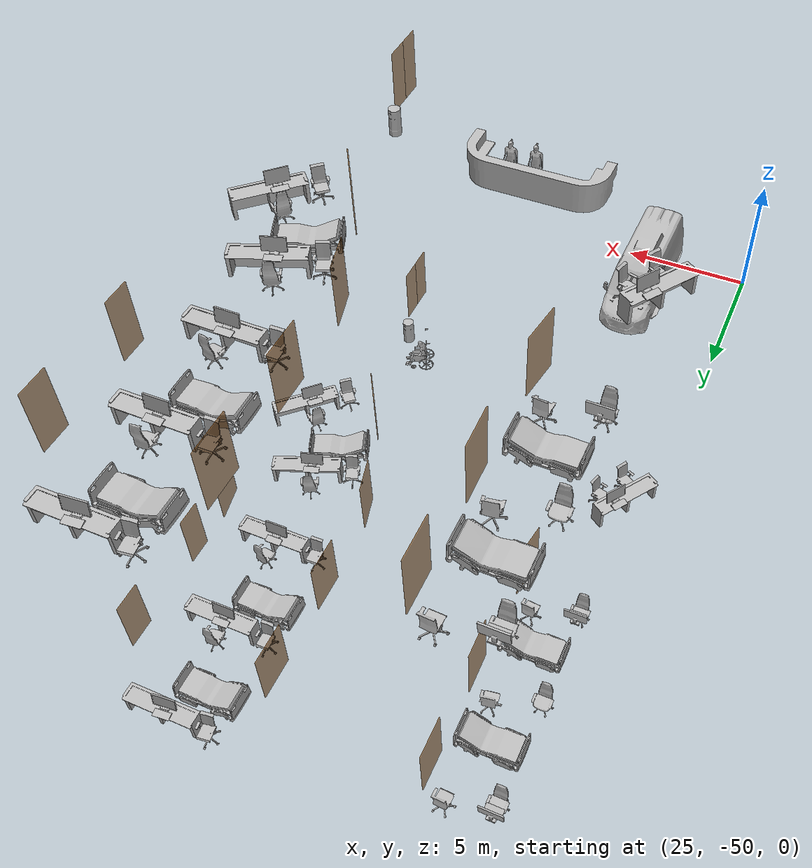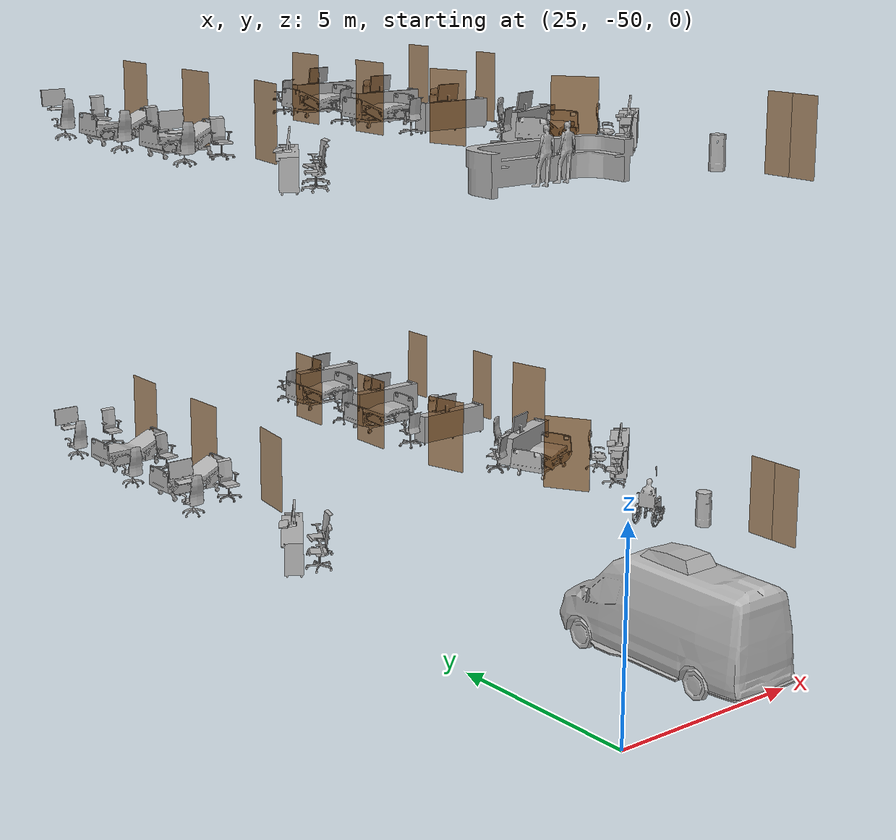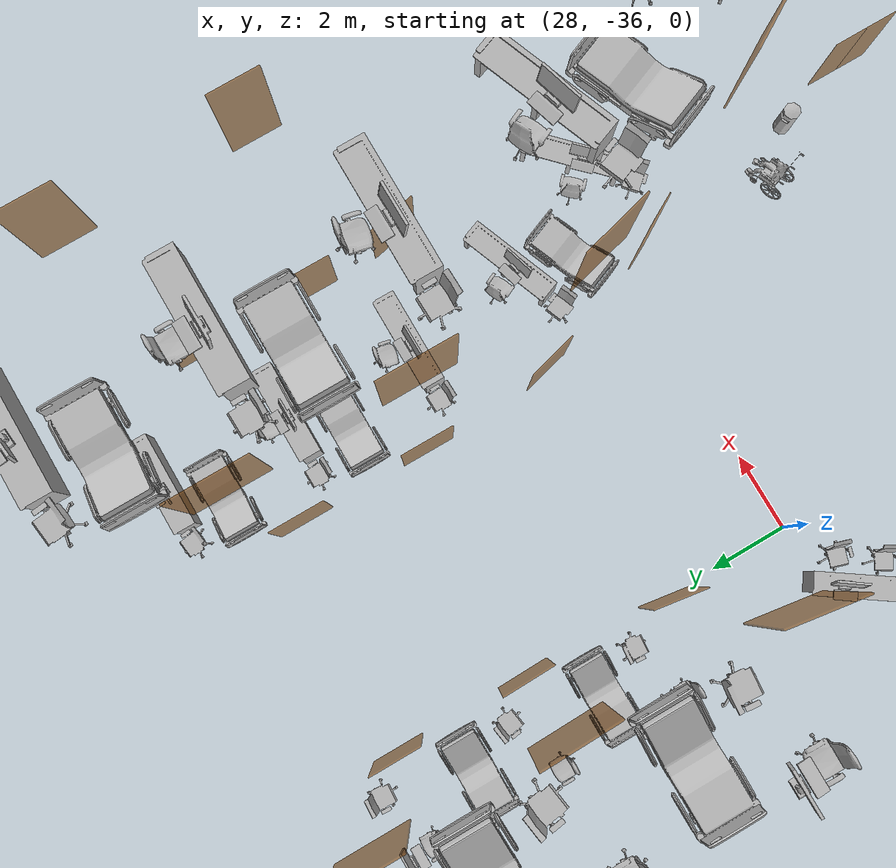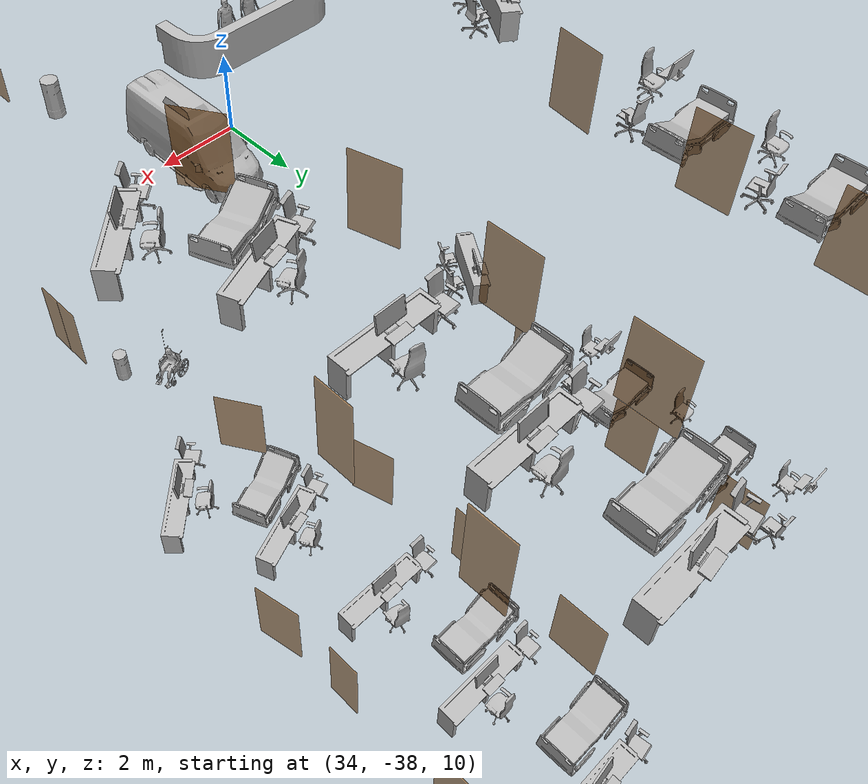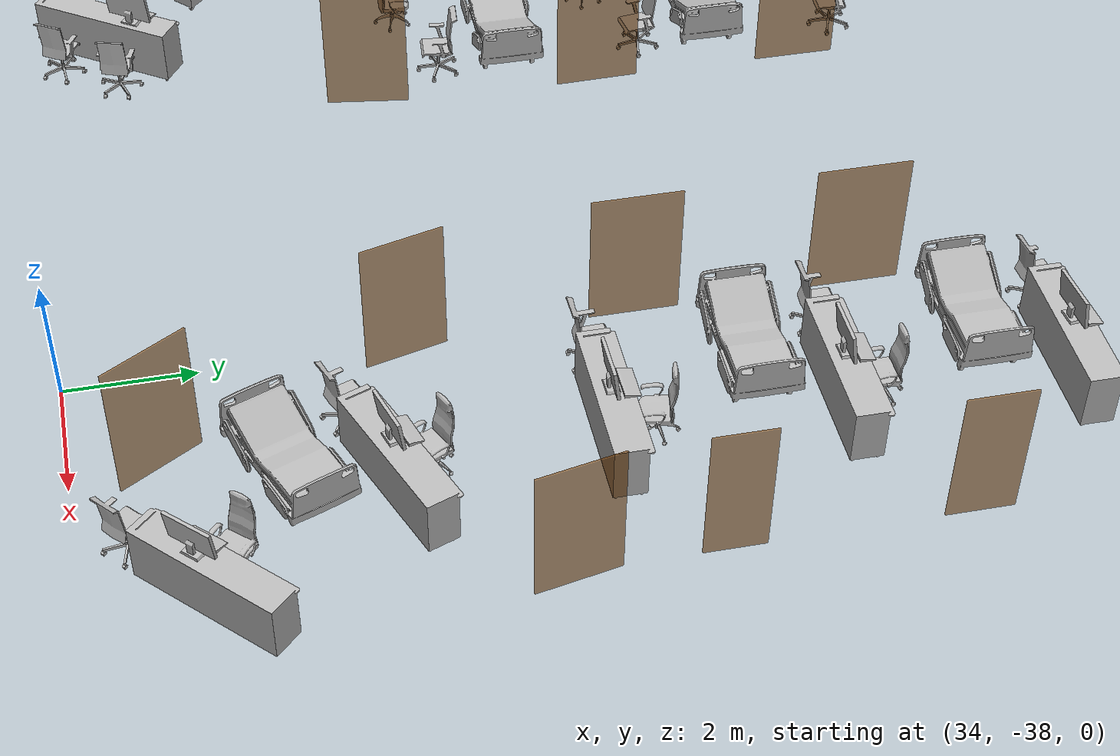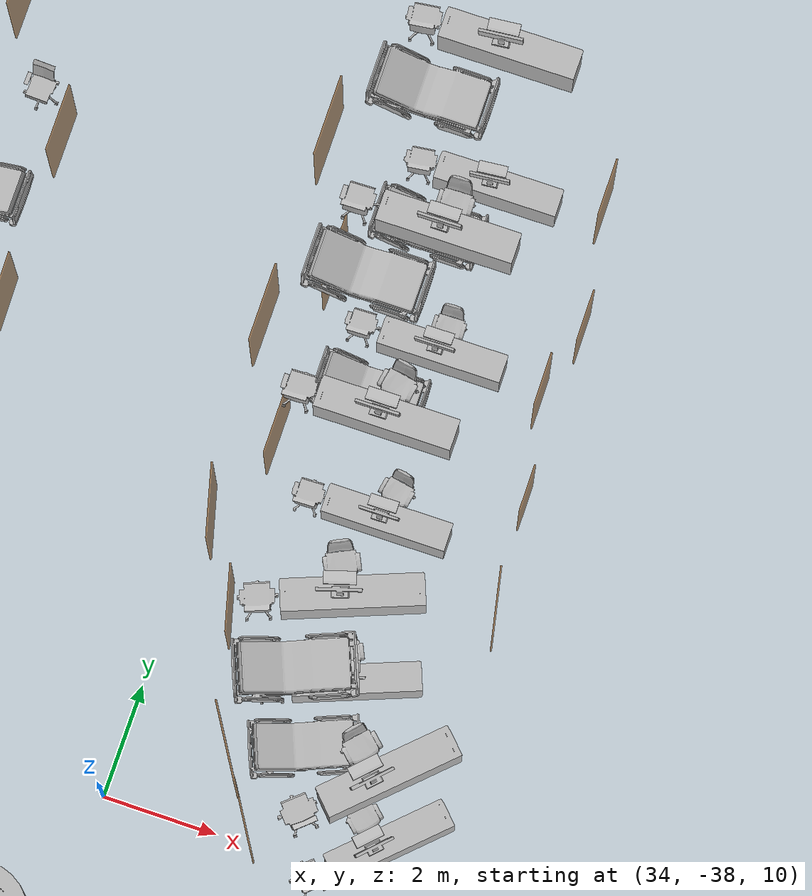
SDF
<sdf version="1.7">
 <world name="sim_world">
  <include>
   <name>OpenRobotics/CGMVanguard</name>
   <uri>model://CGMVanguard</uri>
   <pose>26.88397369331951 -26.628133533325663 0.0 0 0 -3.1416</pose>
   <static>True</static>
  </include>
  <include>
   <name>OpenRobotics/CGMVanguard_2</name>
   <uri>model://CGMVanguard</uri>
   <pose>26.892454136379392 -30.11354178685438 0.0 0 0 -3.1416</pose>
   <static>True</static>
  </include>
  <include>
   <name>OpenRobotics/CGMVanguard_3</name>
   <uri>model://CGMVanguard</uri>
   <pose>35.31267258951582 -24.65983616014771 0.0 0 0 0.0</pose>
   <static>True</static>
  </include>
  <include>
   <name>OpenRobotics/CGMVanguard_4</name>
   <uri>model://CGMVanguard</uri>
   <pose>35.29113495634787 -28.073120264605233 0.0 0 0 0.0</pose>
   <static>True</static>
  </include>
  <include>
   <name>OpenRobotics/CGMVanguard_5</name>
   <uri>model://CGMVanguard</uri>
   <pose>36.303296027075916 -34.964328295065606 0.0 0 0 0.3823</pose>
   <static>True</static>
  </include>
  <include>
   <name>OpenRobotics/NurseTable_2</name>
   <uri>model://NurseTable</uri>
   <pose>25.969216568593538 -36.71566093611788 0.0 0 0 -2.1716</pose>
   <static>True</static>
  </include>
  <include>
   <name>OpenRobotics/NurseTable_29</name>
   <uri>model://NurseTable</uri>
   <pose>36.427595092496475 -23.56122841429178 0.0 0 0 3.1416</pose>
   <static>True</static>
  </include>
  <include>
   <name>OpenRobotics/NurseTable_30</name>
   <uri>model://NurseTable</uri>
   <pose>36.43841775316337 -26.98032767970465 0.0 0 0 3.1416</pose>
   <static>True</static>
  </include>
  <include>
   <name>OpenRobotics/NurseTable_31</name>
   <uri>model://NurseTable</uri>
   <pose>36.470858813122604 -30.399400023076062 0.0 0 0 3.1416</pose>
   <static>True</static>
  </include>
  <include>
   <name>OpenRobotics/NurseTable_32</name>
   <uri>model://NurseTable</uri>
   <pose>36.92530287296646 -33.50472289527329 0.0 0 0 -2.7739</pose>
   <static>True</static>
  </include>
  <include>
   <name>OpenRobotics/NurseTable_33</name>
   <uri>model://NurseTable</uri>
   <pose>38.48336217837779 -36.188069689627355 0.0 0 0 -2.3763</pose>
   <static>True</static>
  </include>
  <include>
   <name>OpenRobotics/DeskChair_18</name>
   <uri>model://DeskChair</uri>
   <pose>25.859266951271128 -31.849878850813457 0.0 0 0 1.5708</pose>
   <static>True</static>
  </include>
  <include>
   <name>OpenRobotics/DeskChair_19</name>
   <uri>model://DeskChair</uri>
   <pose>25.851540325372124 -28.44292142609902 0.0 0 0 1.5708</pose>
   <static>True</static>
  </include>
  <include>
   <name>OpenRobotics/DeskChair_20</name>
   <uri>model://DeskChair</uri>
   <pose>25.900000000000023 -24.942517595477117 0.0 0 0 1.5708</pose>
   <static>True</static>
  </include>
  <include>
   <name>OpenRobotics/DeskChair_29</name>
   <uri>model://DeskChair</uri>
   <pose>36.3957193954079 -26.364324449059673 0.0 0 0 -1.5526</pose>
   <static>True</static>
  </include>
  <include>
   <name>OpenRobotics/DeskChair_36</name>
   <uri>model://DeskChair</uri>
   <pose>37.8422945271336 -35.83951001884546 0.0 0 0 -0.7454</pose>
   <static>True</static>
  </include>
  <include>
   <name>OpenRobotics/DeskChair_37</name>
   <uri>model://DeskChair</uri>
   <pose>36.54037152417218 -32.95664397523175 0.0 0 0 -1.1263</pose>
   <static>True</static>
  </include>
  <include>
   <name>OpenRobotics/DeskChair_38</name>
   <uri>model://DeskChair</uri>
   <pose>36.48870812661055 -29.722499134648693 0.0 0 0 -1.7595</pose>
   <static>True</static>
  </include>
  <include>
   <name>OpenRobotics/OfficeChairGrey_4</name>
   <uri>model://OfficeChairGrey</uri>
   <pose>26.094834814045637 -37.486896657820886 0.0 0 0 -2.1035</pose>
   <static>True</static>
  </include>
  <include>
   <name>OpenRobotics/OfficeChairGrey_5</name>
   <uri>model://OfficeChairGrey</uri>
   <pose>26.727152801815336 -36.599438483135295 0.0 0 0 -1.8657</pose>
   <static>True</static>
  </include>
  <include>
   <name>OpenRobotics/OfficeChairGrey_20</name>
   <uri>model://OfficeChairGrey</uri>
   <pose>37.15492096457832 -37.15411330333452 0.0 0 0 -2.4168</pose>
   <static>True</static>
  </include>
  <include>
   <name>OpenRobotics/OfficeChairGrey_21</name>
   <uri>model://OfficeChairGrey</uri>
   <pose>35.34670204992119 -33.903734471751115 0.0 0 0 -2.7661</pose>
   <static>True</static>
  </include>
  <include>
   <name>OpenRobotics/OfficeChairGrey_22</name>
   <uri>model://OfficeChairGrey</uri>
   <pose>34.89425022114537 -30.217541633014143 0.0 0 0 -3.1148</pose>
   <static>True</static>
  </include>
  <include>
   <name>OpenRobotics/OfficeChairGrey_23</name>
   <uri>model://OfficeChairGrey</uri>
   <pose>34.7871004961348 -26.762097611630345 0.0 0 0 -3.12</pose>
   <static>True</static>
  </include>
  <include>
   <name>OpenRobotics/OfficeChairGrey_24</name>
   <uri>model://OfficeChairGrey</uri>
   <pose>34.83639475404795 -23.360120764586 0.0 0 0 -3.0188</pose>
   <static>True</static>
  </include>
  <include>
   <name>OpenRobotics/OfficeChairGrey_36</name>
   <uri>model://OfficeChairGrey</uri>
   <pose>27.392746432829533 -31.429921926079793 0.0 0 0 -0.0881</pose>
   <static>True</static>
  </include>
  <include>
   <name>OpenRobotics/OfficeChairGrey_37</name>
   <uri>model://OfficeChairGrey</uri>
   <pose>27.403838313911027 -27.957705472866454 0.0 0 0 0.1464</pose>
   <static>True</static>
  </include>
  <include>
   <name>OpenRobotics/OfficeChairGrey_38</name>
   <uri>model://OfficeChairGrey</uri>
   <pose>27.414930194992525 -24.5409484250606 0.0 0 0 -0.0415</pose>
   <static>True</static>
  </include>
  <include>
   <name>OpenRobotics/MonitorAndKeyboard_8</name>
   <uri>model://MonitorAndKeyboard</uri>
   <pose>26.23332179531559 -36.32935656320914 0.86 0 0 -0.6149</pose>
   <static>True</static>
  </include>
  <include>
   <name>OpenRobotics/MonitorAndKeyboard_27</name>
   <uri>model://MonitorAndKeyboard</uri>
   <pose>25.86276681666092 -24.30363062959119 0.86 0 0 1.5708</pose>
   <static>True</static>
  </include>
  <include>
   <name>OpenRobotics/MonitorAndKeyboard_29</name>
   <uri>model://MonitorAndKeyboard</uri>
   <pose>25.84211761086114 -31.20086919733859 0.86 0 0 1.5708</pose>
   <static>True</static>
  </include>
  <include>
   <name>OpenRobotics/MonitorAndKeyboard_33</name>
   <uri>model://MonitorAndKeyboard</uri>
   <pose>36.33969462712975 -30.39625014422525 0.86 0 0 -1.5637</pose>
   <static>True</static>
  </include>
  <include>
   <name>OpenRobotics/MonitorAndKeyboard_34</name>
   <uri>model://MonitorAndKeyboard</uri>
   <pose>36.72002230683439 -33.5557940079228 0.86 0 0 -1.2791</pose>
   <static>True</static>
  </include>
  <include>
   <name>OpenRobotics/MonitorAndKeyboard_35</name>
   <uri>model://MonitorAndKeyboard</uri>
   <pose>38.265051344179106 -36.39617707011272 0.86 0 0 -0.783</pose>
   <static>True</static>
  </include>
  <include>
   <name>OpenRobotics/MonitorAndKeyboard_38</name>
   <uri>model://MonitorAndKeyboard</uri>
   <pose>36.303134494827155 -26.973381793007984 0.86 0 0 -1.5641</pose>
   <static>True</static>
  </include>
  <include>
   <name>OpenRobotics/MonitorAndKeyboard_39</name>
   <uri>model://MonitorAndKeyboard</uri>
   <pose>36.26754355601711 -23.553609476558613 0.86 0 0 -1.4799</pose>
   <static>True</static>
  </include>
  <include>
   <name>OpenRobotics/LitterBin_3</name>
   <uri>model://LitterBin</uri>
   <pose>36.647036652436476 -41.367897388562014 0.0 0 0 1.5708</pose>
   <static>True</static>
  </include>
  <include>
   <name>OpenRobotics/PatientWheelChair_2</name>
   <uri>model://PatientWheelChair</uri>
   <pose>35.65242875274031 -40.27707011268801 0.0 0 0 1.9552</pose>
   <static>True</static>
  </include>
  <include>
   <name>OpenRobotics/Ambulance2</name>
   <uri>model://Ambulance2</uri>
   <pose>28.845379023883723 -47.54596746278993 0.0 0 0 1.5708</pose>
   <static>True</static>
  </include>
  <model name="L1_left_consult_rm_5_outer">
   <pose>28.19374447136651 -28.726235529402743 0.0 0 0 1.5919811640751727</pose>
   <static>true</static>
   <link name="right">
    <pose>0 0 1.11 0 0 0</pose>
    <visual name="right_visual">
     <geometry><box><size>1.37402272615404 0.03 2.2</size></box></geometry>
     <material>
      <ambient>0.5 0.25 0 0.6</ambient>
      <diffuse>0.5 0.25 0 0.6</diffuse>
      <pbr><metal><metalness>0.0</metalness></metal></pbr>
     </material>
    </visual>
    <collision name="right_collision">
     <geometry><box><size>1.37402272615404 0.03 2.2</size></box></geometry>
     <surface><contact><collide_bitmask>0x02</collide_bitmask></contact></surface>
    </collision>
    <inertial>
     <mass>50.0</mass>
     <inertia><ixx>20.17041666666667</ixx><iyy>28.03307688328242</iyy><izz>7.870160216615751</izz></inertia>
    </inertial>
   </link>
   <joint name="right_joint" type="prismatic">
    <parent>world</parent>
    <child>right</child>
    <axis>
     <xyz>1 0 0</xyz>
     <limit><lower>0.0</lower><upper>1.38402272615404</upper><effort>500.0</effort></limit>
    </axis>
   </joint>
  </model>
  <model name="L1_left_consult_rm_4_outer">
   <pose>28.179085419791573 -25.272043382946833 0.0 0 0 1.5707963267948966</pose>
   <static>true</static>
   <link name="right">
    <pose>0 0 1.11 0 0 0</pose>
    <visual name="right_visual">
     <geometry><box><size>1.3399250028845076 0.03 2.2</size></box></geometry>
     <material>
      <ambient>0.5 0.25 0 0.6</ambient>
      <diffuse>0.5 0.25 0 0.6</diffuse>
      <pbr><metal><metalness>0.0</metalness></metal></pbr>
     </material>
    </visual>
    <collision name="right_collision">
     <geometry><box><size>1.3399250028845076 0.03 2.2</size></box></geometry>
     <surface><contact><collide_bitmask>0x02</collide_bitmask></contact></surface>
    </collision>
    <inertial>
     <mass>50.0</mass>
     <inertia><ixx>20.17041666666667</ixx><iyy>27.64749588897937</iyy><izz>7.484579222312698</izz></inertia>
    </inertial>
   </link>
   <joint name="right_joint" type="prismatic">
    <parent>world</parent>
    <child>right</child>
    <axis>
     <xyz>1 0 0</xyz>
     <limit><lower>0.0</lower><upper>1.3499250028845076</upper><effort>500.0</effort></limit>
    </axis>
   </joint>
  </model>
  <model name="L1_right_consult_rm_7_outer">
   <pose>35.78721395330952 -36.69358486212072 0.0 0 0 -1.0202506486553387</pose>
   <static>true</static>
   <link name="right">
    <pose>0 0 1.11 0 0 0</pose>
    <visual name="right_visual">
     <geometry><box><size>1.393912657434285 0.03 2.2</size></box></geometry>
     <material>
      <ambient>0.5 0.25 0 0.6</ambient>
      <diffuse>0.5 0.25 0 0.6</diffuse>
      <pbr><metal><metalness>0.0</metalness></metal></pbr>
     </material>
    </visual>
    <collision name="right_collision">
     <geometry><box><size>1.393912657434285 0.03 2.2</size></box></geometry>
     <surface><contact><collide_bitmask>0x02</collide_bitmask></contact></surface>
    </collision>
    <inertial>
     <mass>50.0</mass>
     <inertia><ixx>20.17041666666667</ixx><iyy>28.262468735647968</iyy><izz>8.099552068981295</izz></inertia>
    </inertial>
   </link>
   <joint name="right_joint" type="prismatic">
    <parent>world</parent>
    <child>right</child>
    <axis>
     <xyz>1 0 0</xyz>
     <limit><lower>0.0</lower><upper>1.403912657434285</upper><effort>500.0</effort></limit>
    </axis>
   </joint>
  </model>
  <model name="L1_right_consult_rm_8_outer">
   <pose>34.22348755817087 -32.956038229298905 0.0 0 0 -1.312559988648813</pose>
   <static>true</static>
   <link name="right">
    <pose>0 0 1.11 0 0 0</pose>
    <visual name="right_visual">
     <geometry><box><size>1.2887902244220548 0.03 2.2</size></box></geometry>
     <material>
      <ambient>0.5 0.25 0 0.6</ambient>
      <diffuse>0.5 0.25 0 0.6</diffuse>
      <pbr><metal><metalness>0.0</metalness></metal></pbr>
     </material>
    </visual>
    <collision name="right_collision">
     <geometry><box><size>1.2887902244220548 0.03 2.2</size></box></geometry>
     <surface><contact><collide_bitmask>0x02</collide_bitmask></contact></surface>
    </collision>
    <inertial>
     <mass>50.0</mass>
     <inertia><ixx>20.17041666666667</ixx><iyy>27.087417677357717</iyy><izz>6.924501010691044</izz></inertia>
    </inertial>
   </link>
   <joint name="right_joint" type="prismatic">
    <parent>world</parent>
    <child>right</child>
    <axis>
     <xyz>1 0 0</xyz>
     <limit><lower>0.0</lower><upper>1.2987902244220548</upper><effort>500.0</effort></limit>
    </axis>
   </joint>
  </model>
  <model name="L1_right_consult_rm_9_outer">
   <pose>33.97311257259339 -29.467264720587693 0.0 0 0 -1.5707963267948966</pose>
   <static>true</static>
   <link name="right">
    <pose>0 0 1.11 0 0 0</pose>
    <visual name="right_visual">
     <geometry><box><size>1.376027460482289 0.03 2.2</size></box></geometry>
     <material>
      <ambient>0.5 0.25 0 0.6</ambient>
      <diffuse>0.5 0.25 0 0.6</diffuse>
      <pbr><metal><metalness>0.0</metalness></metal></pbr>
     </material>
    </visual>
    <collision name="right_collision">
     <geometry><box><size>1.376027460482289 0.03 2.2</size></box></geometry>
     <surface><contact><collide_bitmask>0x02</collide_bitmask></contact></surface>
    </collision>
    <inertial>
     <mass>50.0</mass>
     <inertia><ixx>20.17041666666667</ixx><iyy>28.056048216672245</iyy><izz>7.893131550005574</izz></inertia>
    </inertial>
   </link>
   <joint name="right_joint" type="prismatic">
    <parent>world</parent>
    <child>right</child>
    <axis>
     <xyz>1 0 0</xyz>
     <limit><lower>0.0</lower><upper>1.386027460482289</upper><effort>500.0</effort></limit>
    </axis>
   </joint>
  </model>
  <model name="L1_right_consult_rm_10_outer">
   <pose>33.97311257259339 -26.0495923233722 0.0 0 0 -1.5707963267948966</pose>
   <static>true</static>
   <link name="right">
    <pose>0 0 1.11 0 0 0</pose>
    <visual name="right_visual">
     <geometry><box><size>1.4352559516941648 0.03 2.2</size></box></geometry>
     <material>
      <ambient>0.5 0.25 0 0.6</ambient>
      <diffuse>0.5 0.25 0 0.6</diffuse>
      <pbr><metal><metalness>0.0</metalness></metal></pbr>
     </material>
    </visual>
    <collision name="right_collision">
     <geometry><box><size>1.4352559516941648 0.03 2.2</size></box></geometry>
     <surface><contact><collide_bitmask>0x02</collide_bitmask></contact></surface>
    </collision>
    <inertial>
     <mass>50.0</mass>
     <inertia><ixx>20.17041666666667</ixx><iyy>28.749831861973014</iyy><izz>8.586915195306345</izz></inertia>
    </inertial>
   </link>
   <joint name="right_joint" type="prismatic">
    <parent>world</parent>
    <child>right</child>
    <axis>
     <xyz>1 0 0</xyz>
     <limit><lower>0.0</lower><upper>1.4452559516941648</upper><effort>500.0</effort></limit>
    </axis>
   </joint>
  </model>
  <model name="L1_clinic_b">
   <pose>37.230733433329526 -43.36706088227379 0.0 0 0 1.5707963267948966</pose>
   <static>true</static>
   <link name="left">
    <pose>-0.41352928733510375 0 1.11 0 0 0</pose>
    <visual name="left_visual">
     <geometry><box><size>0.8170585746702075 0.03 2.2</size></box></geometry>
     <material>
      <ambient>0.5 0.25 0 0.6</ambient>
      <diffuse>0.5 0.25 0 0.6</diffuse>
      <pbr><metal><metalness>0.0</metalness></metal></pbr>
     </material>
    </visual>
    <collision name="left_collision">
     <geometry><box><size>0.8170585746702075 0.03 2.2</size></box></geometry>
     <surface><contact><collide_bitmask>0x02</collide_bitmask></contact></surface>
    </collision>
    <inertial>
     <mass>50.0</mass>
     <inertia><ixx>20.17041666666667</ixx><iyy>22.9482696435088</iyy><izz>2.7853529768421295</izz></inertia>
    </inertial>
   </link>
   <joint name="left_joint" type="prismatic">
    <parent>world</parent>
    <child>left</child>
    <axis>
     <xyz>1 0 0</xyz>
     <limit><lower>-0.8270585746702075</lower><upper>0.0</upper><effort>500.0</effort></limit>
    </axis>
   </joint>
   <link name="right">
    <pose>0.41352928733510375 0 1.11 0 0 0</pose>
    <visual name="right_visual">
     <geometry><box><size>0.8170585746702075 0.03 2.2</size></box></geometry>
     <material>
      <ambient>0.5 0.25 0 0.6</ambient>
      <diffuse>0.5 0.25 0 0.6</diffuse>
      <pbr><metal><metalness>0.0</metalness></metal></pbr>
     </material>
    </visual>
    <collision name="right_collision">
     <geometry><box><size>0.8170585746702075 0.03 2.2</size></box></geometry>
     <surface><contact><collide_bitmask>0x02</collide_bitmask></contact></surface>
    </collision>
    <inertial>
     <mass>50.0</mass>
     <inertia><ixx>20.17041666666667</ixx><iyy>22.9482696435088</iyy><izz>2.7853529768421295</izz></inertia>
    </inertial>
   </link>
   <joint name="right_joint" type="prismatic">
    <parent>world</parent>
    <child>right</child>
    <axis>
     <xyz>1 0 0</xyz>
     <limit><lower>0.0</lower><upper>0.8270585746702075</upper><effort>500.0</effort></limit>
    </axis>
   </joint>
  </model>
  <model name="L1_left_consult_rm_6_outer">
   <pose>28.03191608015079 -32.60593054113306 0.0 0 0 1.424311827427732</pose>
   <static>true</static>
   <link name="right">
    <pose>0 0 1.11 0 0 0</pose>
    <visual name="right_visual">
     <geometry><box><size>1.350293476713609 0.03 2.2</size></box></geometry>
     <material>
      <ambient>0.5 0.25 0 0.6</ambient>
      <diffuse>0.5 0.25 0 0.6</diffuse>
      <pbr><metal><metalness>0.0</metalness></metal></pbr>
     </material>
    </visual>
    <collision name="right_collision">
     <geometry><box><size>1.350293476713609 0.03 2.2</size></box></geometry>
     <surface><contact><collide_bitmask>0x02</collide_bitmask></contact></surface>
    </collision>
    <inertial>
     <mass>50.0</mass>
     <inertia><ixx>20.17041666666667</ixx><iyy>27.763718638563862</iyy><izz>7.600801971897191</izz></inertia>
    </inertial>
   </link>
   <joint name="right_joint" type="prismatic">
    <parent>world</parent>
    <child>right</child>
    <axis>
     <xyz>1 0 0</xyz>
     <limit><lower>0.0</lower><upper>1.360293476713609</upper><effort>500.0</effort></limit>
    </axis>
   </joint>
  </model>
  <model name="L1_right_consult_rm_8_inner">
   <pose>38.98574093304107 -31.404170993423357 0.0 0 0 1.771758447609014</pose>
   <static>true</static>
   <link name="left">
    <pose>0 0 1.11 0 0 0</pose>
    <visual name="left_visual">
     <geometry><box><size>1.2956932791881277 0.03 2.2</size></box></geometry>
     <material>
      <ambient>0.5 0.25 0 0.6</ambient>
      <diffuse>0.5 0.25 0 0.6</diffuse>
      <pbr><metal><metalness>0.0</metalness></metal></pbr>
     </material>
    </visual>
    <collision name="left_collision">
     <geometry><box><size>1.2956932791881277 0.03 2.2</size></box></geometry>
     <surface><contact><collide_bitmask>0x02</collide_bitmask></contact></surface>
    </collision>
    <inertial>
     <mass>50.0</mass>
     <inertia><ixx>20.17041666666667</ixx><iyy>27.16175447388869</iyy><izz>6.9988378072220145</izz></inertia>
    </inertial>
   </link>
   <joint name="left_joint" type="revolute">
    <parent>world</parent>
    <child>left</child>
    <axis><xyz>0 0 1</xyz><limit><lower>-1.57</lower><upper>0</upper></limit></axis>
    <pose>0.6528466395940639 0 0 0 0 0</pose>
   </joint>
  </model>
  <model name="L1_right_consult_rm_9_inner">
   <pose>38.85542479135422 -29.212568747355895 0.0 0 0 1.5707963267948966</pose>
   <static>true</static>
   <link name="right">
    <pose>0 0 1.11 0 0 0</pose>
    <visual name="right_visual">
     <geometry><box><size>0.9140183069881915 0.03 2.2</size></box></geometry>
     <material>
      <ambient>0.5 0.25 0 0.6</ambient>
      <diffuse>0.5 0.25 0 0.6</diffuse>
      <pbr><metal><metalness>0.0</metalness></metal></pbr>
     </material>
    </visual>
    <collision name="right_collision">
     <geometry><box><size>0.9140183069881915 0.03 2.2</size></box></geometry>
     <surface><contact><collide_bitmask>0x02</collide_bitmask></contact></surface>
    </collision>
    <inertial>
     <mass>50.0</mass>
     <inertia><ixx>20.17041666666667</ixx><iyy>23.647622772956506</iyy><izz>3.4847061062898335</izz></inertia>
    </inertial>
   </link>
   <joint name="right_joint" type="prismatic">
    <parent>world</parent>
    <child>right</child>
    <axis>
     <xyz>1 0 0</xyz>
     <limit><lower>0.0</lower><upper>0.9240183069881915</upper><effort>500.0</effort></limit>
    </axis>
   </joint>
  </model>
  <model name="L1_right_consult_rm_10_inner">
   <pose>38.85542479135422 -25.72973154878661 0.0 0 0 1.5707963267948966</pose>
   <static>true</static>
   <link name="right">
    <pose>0 0 1.11 0 0 0</pose>
    <visual name="right_visual">
     <geometry><box><size>1.0088108149686563 0.03 2.2</size></box></geometry>
     <material>
      <ambient>0.5 0.25 0 0.6</ambient>
      <diffuse>0.5 0.25 0 0.6</diffuse>
      <pbr><metal><metalness>0.0</metalness></metal></pbr>
     </material>
    </visual>
    <collision name="right_collision">
     <geometry><box><size>1.0088108149686563 0.03 2.2</size></box></geometry>
     <surface><contact><collide_bitmask>0x02</collide_bitmask></contact></surface>
    </collision>
    <inertial>
     <mass>50.0</mass>
     <inertia><ixx>20.17041666666667</ixx><iyy>24.407080251657188</iyy><izz>4.2441635849905195</izz></inertia>
    </inertial>
   </link>
   <joint name="right_joint" type="prismatic">
    <parent>world</parent>
    <child>right</child>
    <axis>
     <xyz>1 0 0</xyz>
     <limit><lower>0.0</lower><upper>1.0188108149686563</upper><effort>500.0</effort></limit>
    </axis>
   </joint>
  </model>
  <include>
   <name>OpenRobotics/CGMVanguard_21</name>
   <uri>model://CGMVanguard</uri>
   <pose>26.88397369331951 -26.628133533325663 10.0 0 0 -3.1416</pose>
   <static>True</static>
  </include>
  <include>
   <name>OpenRobotics/CGMVanguard_22</name>
   <uri>model://CGMVanguard</uri>
   <pose>26.892454136379392 -30.11354178685438 10.0 0 0 -3.1416</pose>
   <static>True</static>
  </include>
  <include>
   <name>OpenRobotics/CGMVanguard_23</name>
   <uri>model://CGMVanguard</uri>
   <pose>35.31267258951582 -24.65983616014771 10.0 0 0 0.0</pose>
   <static>True</static>
  </include>
  <include>
   <name>OpenRobotics/CGMVanguard_24</name>
   <uri>model://CGMVanguard</uri>
   <pose>35.29113495634787 -28.073120264605233 10.0 0 0 0.0</pose>
   <static>True</static>
  </include>
  <include>
   <name>OpenRobotics/CGMVanguard_25</name>
   <uri>model://CGMVanguard</uri>
   <pose>36.303296027075916 -34.964328295065606 10.0 0 0 0.3823</pose>
   <static>True</static>
  </include>
  <include>
   <name>OpenRobotics/NurseTable_45</name>
   <uri>model://NurseTable</uri>
   <pose>25.969216568593538 -36.71566093611788 10.0 0 0 -2.1716</pose>
   <static>True</static>
  </include>
  <include>
   <name>OpenRobotics/NurseTable_69</name>
   <uri>model://NurseTable</uri>
   <pose>36.427595092496475 -23.56122841429178 10.0 0 0 3.1416</pose>
   <static>True</static>
  </include>
  <include>
   <name>OpenRobotics/NurseTable_70</name>
   <uri>model://NurseTable</uri>
   <pose>36.43841775316337 -26.98032767970465 10.0 0 0 3.1416</pose>
   <static>True</static>
  </include>
  <include>
   <name>OpenRobotics/NurseTable_71</name>
   <uri>model://NurseTable</uri>
   <pose>36.470858813122604 -30.399400023076062 10.0 0 0 3.1416</pose>
   <static>True</static>
  </include>
  <include>
   <name>OpenRobotics/NurseTable_72</name>
   <uri>model://NurseTable</uri>
   <pose>36.92530287296646 -33.50472289527329 10.0 0 0 -2.7739</pose>
   <static>True</static>
  </include>
  <include>
   <name>OpenRobotics/NurseTable_73</name>
   <uri>model://NurseTable</uri>
   <pose>38.48336217837779 -36.188069689627355 10.0 0 0 -2.3763</pose>
   <static>True</static>
  </include>
  <include>
   <name>OpenRobotics/DeskChair_58</name>
   <uri>model://DeskChair</uri>
   <pose>25.859266951271128 -31.849878850813457 10.0 0 0 1.5708</pose>
   <static>True</static>
  </include>
  <include>
   <name>OpenRobotics/DeskChair_59</name>
   <uri>model://DeskChair</uri>
   <pose>25.851540325372124 -28.44292142609902 10.0 0 0 1.5708</pose>
   <static>True</static>
  </include>
  <include>
   <name>OpenRobotics/DeskChair_60</name>
   <uri>model://DeskChair</uri>
   <pose>25.900000000000023 -24.942517595477117 10.0 0 0 1.5708</pose>
   <static>True</static>
  </include>
  <include>
   <name>OpenRobotics/DeskChair_69</name>
   <uri>model://DeskChair</uri>
   <pose>36.3957193954079 -26.364324449059673 10.0 0 0 -1.5526</pose>
   <static>True</static>
  </include>
  <include>
   <name>OpenRobotics/DeskChair_76</name>
   <uri>model://DeskChair</uri>
   <pose>37.8422945271336 -35.83951001884546 10.0 0 0 -0.7454</pose>
   <static>True</static>
  </include>
  <include>
   <name>OpenRobotics/DeskChair_77</name>
   <uri>model://DeskChair</uri>
   <pose>36.54037152417218 -32.95664397523175 10.0 0 0 -1.1263</pose>
   <static>True</static>
  </include>
  <include>
   <name>OpenRobotics/DeskChair_78</name>
   <uri>model://DeskChair</uri>
   <pose>36.48870812661055 -29.722499134648693 10.0 0 0 -1.7595</pose>
   <static>True</static>
  </include>
  <include>
   <name>OpenRobotics/OfficeChairGrey_52</name>
   <uri>model://OfficeChairGrey</uri>
   <pose>26.094834814045637 -37.486896657820886 10.0 0 0 -2.1035</pose>
   <static>True</static>
  </include>
  <include>
   <name>OpenRobotics/OfficeChairGrey_53</name>
   <uri>model://OfficeChairGrey</uri>
   <pose>26.727152801815336 -36.599438483135295 10.0 0 0 -1.8657</pose>
   <static>True</static>
  </include>
  <include>
   <name>OpenRobotics/OfficeChairGrey_65</name>
   <uri>model://OfficeChairGrey</uri>
   <pose>37.15492096457832 -37.15411330333452 10.0 0 0 -2.4168</pose>
   <static>True</static>
  </include>
  <include>
   <name>OpenRobotics/OfficeChairGrey_66</name>
   <uri>model://OfficeChairGrey</uri>
   <pose>35.34670204992119 -33.903734471751115 10.0 0 0 -2.7661</pose>
   <static>True</static>
  </include>
  <include>
   <name>OpenRobotics/OfficeChairGrey_67</name>
   <uri>model://OfficeChairGrey</uri>
   <pose>34.89425022114537 -30.217541633014143 10.0 0 0 -3.1148</pose>
   <static>True</static>
  </include>
  <include>
   <name>OpenRobotics/OfficeChairGrey_68</name>
   <uri>model://OfficeChairGrey</uri>
   <pose>34.7871004961348 -26.762097611630345 10.0 0 0 -3.12</pose>
   <static>True</static>
  </include>
  <include>
   <name>OpenRobotics/OfficeChairGrey_69</name>
   <uri>model://OfficeChairGrey</uri>
   <pose>34.83639475404795 -23.360120764586 10.0 0 0 -3.0188</pose>
   <static>True</static>
  </include>
  <include>
   <name>OpenRobotics/OfficeChairGrey_76</name>
   <uri>model://OfficeChairGrey</uri>
   <pose>27.392746432829533 -31.429921926079793 10.0 0 0 -0.0881</pose>
   <static>True</static>
  </include>
  <include>
   <name>OpenRobotics/OfficeChairGrey_77</name>
   <uri>model://OfficeChairGrey</uri>
   <pose>27.403838313911027 -27.957705472866454 10.0 0 0 0.1464</pose>
   <static>True</static>
  </include>
  <include>
   <name>OpenRobotics/OfficeChairGrey_78</name>
   <uri>model://OfficeChairGrey</uri>
   <pose>27.414930194992525 -24.5409484250606 10.0 0 0 -0.0415</pose>
   <static>True</static>
  </include>
  <include>
   <name>OpenRobotics/MonitorAndKeyboard_59</name>
   <uri>model://MonitorAndKeyboard</uri>
   <pose>26.23332179531559 -36.32935656320914 10.86 0 0 -0.6149</pose>
   <static>True</static>
  </include>
  <include>
   <name>OpenRobotics/MonitorAndKeyboard_70</name>
   <uri>model://MonitorAndKeyboard</uri>
   <pose>25.86276681666092 -24.30363062959119 10.86 0 0 1.5708</pose>
   <static>True</static>
  </include>
  <include>
   <name>OpenRobotics/MonitorAndKeyboard_72</name>
   <uri>model://MonitorAndKeyboard</uri>
   <pose>25.84211761086114 -31.20086919733859 10.86 0 0 1.5708</pose>
   <static>True</static>
  </include>
  <include>
   <name>OpenRobotics/MonitorAndKeyboard_76</name>
   <uri>model://MonitorAndKeyboard</uri>
   <pose>36.33969462712975 -30.39625014422525 10.86 0 0 -1.5637</pose>
   <static>True</static>
  </include>
  <include>
   <name>OpenRobotics/MonitorAndKeyboard_77</name>
   <uri>model://MonitorAndKeyboard</uri>
   <pose>36.72002230683439 -33.5557940079228 10.86 0 0 -1.2791</pose>
   <static>True</static>
  </include>
  <include>
   <name>OpenRobotics/MonitorAndKeyboard_78</name>
   <uri>model://MonitorAndKeyboard</uri>
   <pose>38.265051344179106 -36.39617707011272 10.86 0 0 -0.783</pose>
   <static>True</static>
  </include>
  <include>
   <name>OpenRobotics/MonitorAndKeyboard_81</name>
   <uri>model://MonitorAndKeyboard</uri>
   <pose>36.303134494827155 -26.973381793007984 10.86 0 0 -1.5641</pose>
   <static>True</static>
  </include>
  <include>
   <name>OpenRobotics/MonitorAndKeyboard_82</name>
   <uri>model://MonitorAndKeyboard</uri>
   <pose>36.26754355601711 -23.553609476558613 10.86 0 0 -1.4799</pose>
   <static>True</static>
  </include>
  <include>
   <name>OpenRobotics/LitterBin_13</name>
   <uri>model://LitterBin</uri>
   <pose>36.647036652436476 -41.367897388562014 10.0 0 0 1.5708</pose>
   <static>True</static>
  </include>
  <include>
   <name>OpenRobotics/NurseDesk</name>
   <uri>model://NurseDesk</uri>
   <pose>31.17688165839778 -40.13249875004811 10.0 0 0 3.1416</pose>
   <static>True</static>
  </include>
  <include>
   <name>OpenRobotics/Scrubs_11</name>
   <uri>model://Scrubs</uri>
   <pose>31.228248913503354 -40.51320333833318 10.0 0 0 1.5708</pose>
   <static>True</static>
  </include>
  <include>
   <name>OpenRobotics/Scrubs_12</name>
   <uri>model://Scrubs</uri>
   <pose>32.046652051844184 -40.4064574439445 10.0 0 0 1.5708</pose>
   <static>True</static>
  </include>
  <model name="L2_left_consult_rm_5_outer">
   <pose>28.19374447136651 -28.726235529402743 10.0 0 0 1.5919811640751727</pose>
   <static>true</static>
   <link name="right">
    <pose>0 0 1.11 0 0 0</pose>
    <visual name="right_visual">
     <geometry><box><size>1.37402272615404 0.03 2.2</size></box></geometry>
     <material>
      <ambient>0.5 0.25 0 0.6</ambient>
      <diffuse>0.5 0.25 0 0.6</diffuse>
      <pbr><metal><metalness>0.0</metalness></metal></pbr>
     </material>
    </visual>
    <collision name="right_collision">
     <geometry><box><size>1.37402272615404 0.03 2.2</size></box></geometry>
     <surface><contact><collide_bitmask>0x02</collide_bitmask></contact></surface>
    </collision>
    <inertial>
     <mass>50.0</mass>
     <inertia><ixx>20.17041666666667</ixx><iyy>28.03307688328242</iyy><izz>7.870160216615751</izz></inertia>
    </inertial>
   </link>
   <joint name="right_joint" type="prismatic">
    <parent>world</parent>
    <child>right</child>
    <axis>
     <xyz>1 0 0</xyz>
     <limit><lower>0.0</lower><upper>1.38402272615404</upper><effort>500.0</effort></limit>
    </axis>
   </joint>
  </model>
  <model name="L2_left_consult_rm_4_outer">
   <pose>28.179085419791573 -25.272043382946833 10.0 0 0 1.5707963267948966</pose>
   <static>true</static>
   <link name="right">
    <pose>0 0 1.11 0 0 0</pose>
    <visual name="right_visual">
     <geometry><box><size>1.3399250028845076 0.03 2.2</size></box></geometry>
     <material>
      <ambient>0.5 0.25 0 0.6</ambient>
      <diffuse>0.5 0.25 0 0.6</diffuse>
      <pbr><metal><metalness>0.0</metalness></metal></pbr>
     </material>
    </visual>
    <collision name="right_collision">
     <geometry><box><size>1.3399250028845076 0.03 2.2</size></box></geometry>
     <surface><contact><collide_bitmask>0x02</collide_bitmask></contact></surface>
    </collision>
    <inertial>
     <mass>50.0</mass>
     <inertia><ixx>20.17041666666667</ixx><iyy>27.64749588897937</iyy><izz>7.484579222312698</izz></inertia>
    </inertial>
   </link>
   <joint name="right_joint" type="prismatic">
    <parent>world</parent>
    <child>right</child>
    <axis>
     <xyz>1 0 0</xyz>
     <limit><lower>0.0</lower><upper>1.3499250028845076</upper><effort>500.0</effort></limit>
    </axis>
   </joint>
  </model>
  <model name="L2_right_consult_rm_7_outer">
   <pose>35.78721395330952 -36.69358486212072 10.0 0 0 -1.0202506486553387</pose>
   <static>true</static>
   <link name="right">
    <pose>0 0 1.11 0 0 0</pose>
    <visual name="right_visual">
     <geometry><box><size>1.393912657434285 0.03 2.2</size></box></geometry>
     <material>
      <ambient>0.5 0.25 0 0.6</ambient>
      <diffuse>0.5 0.25 0 0.6</diffuse>
      <pbr><metal><metalness>0.0</metalness></metal></pbr>
     </material>
    </visual>
    <collision name="right_collision">
     <geometry><box><size>1.393912657434285 0.03 2.2</size></box></geometry>
     <surface><contact><collide_bitmask>0x02</collide_bitmask></contact></surface>
    </collision>
    <inertial>
     <mass>50.0</mass>
     <inertia><ixx>20.17041666666667</ixx><iyy>28.262468735647968</iyy><izz>8.099552068981295</izz></inertia>
    </inertial>
   </link>
   <joint name="right_joint" type="prismatic">
    <parent>world</parent>
    <child>right</child>
    <axis>
     <xyz>1 0 0</xyz>
     <limit><lower>0.0</lower><upper>1.403912657434285</upper><effort>500.0</effort></limit>
    </axis>
   </joint>
  </model>
  <model name="L2_right_consult_rm_8_outer">
   <pose>34.22348755817087 -32.956038229298905 10.0 0 0 -1.312559988648813</pose>
   <static>true</static>
   <link name="right">
    <pose>0 0 1.11 0 0 0</pose>
    <visual name="right_visual">
     <geometry><box><size>1.2887902244220548 0.03 2.2</size></box></geometry>
     <material>
      <ambient>0.5 0.25 0 0.6</ambient>
      <diffuse>0.5 0.25 0 0.6</diffuse>
      <pbr><metal><metalness>0.0</metalness></metal></pbr>
     </material>
    </visual>
    <collision name="right_collision">
     <geometry><box><size>1.2887902244220548 0.03 2.2</size></box></geometry>
     <surface><contact><collide_bitmask>0x02</collide_bitmask></contact></surface>
    </collision>
    <inertial>
     <mass>50.0</mass>
     <inertia><ixx>20.17041666666667</ixx><iyy>27.087417677357717</iyy><izz>6.924501010691044</izz></inertia>
    </inertial>
   </link>
   <joint name="right_joint" type="prismatic">
    <parent>world</parent>
    <child>right</child>
    <axis>
     <xyz>1 0 0</xyz>
     <limit><lower>0.0</lower><upper>1.2987902244220548</upper><effort>500.0</effort></limit>
    </axis>
   </joint>
  </model>
  <model name="L2_right_consult_rm_9_outer">
   <pose>33.97311257259339 -29.467264720587693 10.0 0 0 -1.5707963267948966</pose>
   <static>true</static>
   <link name="right">
    <pose>0 0 1.11 0 0 0</pose>
    <visual name="right_visual">
     <geometry><box><size>1.376027460482289 0.03 2.2</size></box></geometry>
     <material>
      <ambient>0.5 0.25 0 0.6</ambient>
      <diffuse>0.5 0.25 0 0.6</diffuse>
      <pbr><metal><metalness>0.0</metalness></metal></pbr>
     </material>
    </visual>
    <collision name="right_collision">
     <geometry><box><size>1.376027460482289 0.03 2.2</size></box></geometry>
     <surface><contact><collide_bitmask>0x02</collide_bitmask></contact></surface>
    </collision>
    <inertial>
     <mass>50.0</mass>
     <inertia><ixx>20.17041666666667</ixx><iyy>28.056048216672245</iyy><izz>7.893131550005574</izz></inertia>
    </inertial>
   </link>
   <joint name="right_joint" type="prismatic">
    <parent>world</parent>
    <child>right</child>
    <axis>
     <xyz>1 0 0</xyz>
     <limit><lower>0.0</lower><upper>1.386027460482289</upper><effort>500.0</effort></limit>
    </axis>
   </joint>
  </model>
  <model name="L2_right_consult_rm_10_outer">
   <pose>33.97311257259339 -26.0495923233722 10.0 0 0 -1.5707963267948966</pose>
   <static>true</static>
   <link name="right">
    <pose>0 0 1.11 0 0 0</pose>
    <visual name="right_visual">
     <geometry><box><size>1.4352559516941648 0.03 2.2</size></box></geometry>
     <material>
      <ambient>0.5 0.25 0 0.6</ambient>
      <diffuse>0.5 0.25 0 0.6</diffuse>
      <pbr><metal><metalness>0.0</metalness></metal></pbr>
     </material>
    </visual>
    <collision name="right_collision">
     <geometry><box><size>1.4352559516941648 0.03 2.2</size></box></geometry>
     <surface><contact><collide_bitmask>0x02</collide_bitmask></contact></surface>
    </collision>
    <inertial>
     <mass>50.0</mass>
     <inertia><ixx>20.17041666666667</ixx><iyy>28.749831861973014</iyy><izz>8.586915195306345</izz></inertia>
    </inertial>
   </link>
   <joint name="right_joint" type="prismatic">
    <parent>world</parent>
    <child>right</child>
    <axis>
     <xyz>1 0 0</xyz>
     <limit><lower>0.0</lower><upper>1.4452559516941648</upper><effort>500.0</effort></limit>
    </axis>
   </joint>
  </model>
  <model name="L2_clinic_b">
   <pose>37.230733433329526 -43.36706088227379 10.0 0 0 1.5707963267948966</pose>
   <link name="left">
    <pose>-0.41352928733510375 0 1.11 0 0 0</pose>
    <visual name="left_visual">
     <geometry><box><size>0.8170585746702075 0.03 2.2</size></box></geometry>
     <material>
      <ambient>0.5 0.25 0 0.6</ambient>
      <diffuse>0.5 0.25 0 0.6</diffuse>
      <pbr><metal><metalness>0.0</metalness></metal></pbr>
     </material>
    </visual>
    <collision name="left_collision">
     <geometry><box><size>0.8170585746702075 0.03 2.2</size></box></geometry>
     <surface><contact><collide_bitmask>0x02</collide_bitmask></contact></surface>
    </collision>
    <inertial>
     <mass>50.0</mass>
     <inertia><ixx>20.17041666666667</ixx><iyy>22.9482696435088</iyy><izz>2.7853529768421295</izz></inertia>
    </inertial>
   </link>
   <joint name="left_joint" type="prismatic">
    <parent>world</parent>
    <child>left</child>
    <axis>
     <xyz>1 0 0</xyz>
     <limit><lower>-0.8270585746702075</lower><upper>0.0</upper><effort>500.0</effort></limit>
    </axis>
   </joint>
   <link name="right">
    <pose>0.41352928733510375 0 1.11 0 0 0</pose>
    <visual name="right_visual">
     <geometry><box><size>0.8170585746702075 0.03 2.2</size></box></geometry>
     <material>
      <ambient>0.5 0.25 0 0.6</ambient>
      <diffuse>0.5 0.25 0 0.6</diffuse>
      <pbr><metal><metalness>0.0</metalness></metal></pbr>
     </material>
    </visual>
    <collision name="right_collision">
     <geometry><box><size>0.8170585746702075 0.03 2.2</size></box></geometry>
     <surface><contact><collide_bitmask>0x02</collide_bitmask></contact></surface>
    </collision>
    <inertial>
     <mass>50.0</mass>
     <inertia><ixx>20.17041666666667</ixx><iyy>22.9482696435088</iyy><izz>2.7853529768421295</izz></inertia>
    </inertial>
   </link>
   <joint name="right_joint" type="prismatic">
    <parent>world</parent>
    <child>right</child>
    <axis>
     <xyz>1 0 0</xyz>
     <limit><lower>0.0</lower><upper>0.8270585746702075</upper><effort>500.0</effort></limit>
    </axis>
   </joint>
   <plugin name="door" filename="libdoor.so">
    <v_max_door>0.2</v_max_door>
    <a_max_door>0.2</a_max_door>
    <a_nom_door>0.08</a_nom_door>
    <dx_min_door>0.001</dx_min_door>
    <f_max_door>100.0</f_max_door>
    <door name="L2_clinic_b" type="DoubleSlidingDoor" left_joint_name="left_joint" right_joint_name="right_joint"/>
   </plugin>
  </model>
  <model name="L2_left_consult_rm_6_outer">
   <pose>28.03191608015079 -32.60593054113306 10.0 0 0 1.424311827427732</pose>
   <static>true</static>
   <link name="right">
    <pose>0 0 1.11 0 0 0</pose>
    <visual name="right_visual">
     <geometry><box><size>1.350293476713609 0.03 2.2</size></box></geometry>
     <material>
      <ambient>0.5 0.25 0 0.6</ambient>
      <diffuse>0.5 0.25 0 0.6</diffuse>
      <pbr><metal><metalness>0.0</metalness></metal></pbr>
     </material>
    </visual>
    <collision name="right_collision">
     <geometry><box><size>1.350293476713609 0.03 2.2</size></box></geometry>
     <surface><contact><collide_bitmask>0x02</collide_bitmask></contact></surface>
    </collision>
    <inertial>
     <mass>50.0</mass>
     <inertia><ixx>20.17041666666667</ixx><iyy>27.763718638563862</iyy><izz>7.600801971897191</izz></inertia>
    </inertial>
   </link>
   <joint name="right_joint" type="prismatic">
    <parent>world</parent>
    <child>right</child>
    <axis>
     <xyz>1 0 0</xyz>
     <limit><lower>0.0</lower><upper>1.360293476713609</upper><effort>500.0</effort></limit>
    </axis>
   </joint>
  </model>
  <model name="L2_right_consult_rm_10_inner">
   <pose>38.85542479135422 -25.72973154878661 10.0 0 0 1.5707963267948966</pose>
   <static>true</static>
   <link name="right">
    <pose>0 0 1.11 0 0 0</pose>
    <visual name="right_visual">
     <geometry><box><size>1.0088108149686563 0.03 2.2</size></box></geometry>
     <material>
      <ambient>0.5 0.25 0 0.6</ambient>
      <diffuse>0.5 0.25 0 0.6</diffuse>
      <pbr><metal><metalness>0.0</metalness></metal></pbr>
     </material>
    </visual>
    <collision name="right_collision">
     <geometry><box><size>1.0088108149686563 0.03 2.2</size></box></geometry>
     <surface><contact><collide_bitmask>0x02</collide_bitmask></contact></surface>
    </collision>
    <inertial>
     <mass>50.0</mass>
     <inertia><ixx>20.17041666666667</ixx><iyy>24.407080251657188</iyy><izz>4.2441635849905195</izz></inertia>
    </inertial>
   </link>
   <joint name="right_joint" type="prismatic">
    <parent>world</parent>
    <child>right</child>
    <axis>
     <xyz>1 0 0</xyz>
     <limit><lower>0.0</lower><upper>1.0188108149686563</upper><effort>500.0</effort></limit>
    </axis>
   </joint>
  </model>
  <model name="L2_right_consult_rm_9_inner">
   <pose>38.85542479135422 -29.212568747355895 10.0 0 0 1.5707963267948966</pose>
   <static>true</static>
   <link name="right">
    <pose>0 0 1.11 0 0 0</pose>
    <visual name="right_visual">
     <geometry><box><size>0.9140183069881915 0.03 2.2</size></box></geometry>
     <material>
      <ambient>0.5 0.25 0 0.6</ambient>
      <diffuse>0.5 0.25 0 0.6</diffuse>
      <pbr><metal><metalness>0.0</metalness></metal></pbr>
     </material>
    </visual>
    <collision name="right_collision">
     <geometry><box><size>0.9140183069881915 0.03 2.2</size></box></geometry>
     <surface><contact><collide_bitmask>0x02</collide_bitmask></contact></surface>
    </collision>
    <inertial>
     <mass>50.0</mass>
     <inertia><ixx>20.17041666666667</ixx><iyy>23.647622772956506</iyy><izz>3.4847061062898335</izz></inertia>
    </inertial>
   </link>
   <joint name="right_joint" type="prismatic">
    <parent>world</parent>
    <child>right</child>
    <axis>
     <xyz>1 0 0</xyz>
     <limit><lower>0.0</lower><upper>0.9240183069881915</upper><effort>500.0</effort></limit>
    </axis>
   </joint>
  </model>
 </world>
</sdf>
